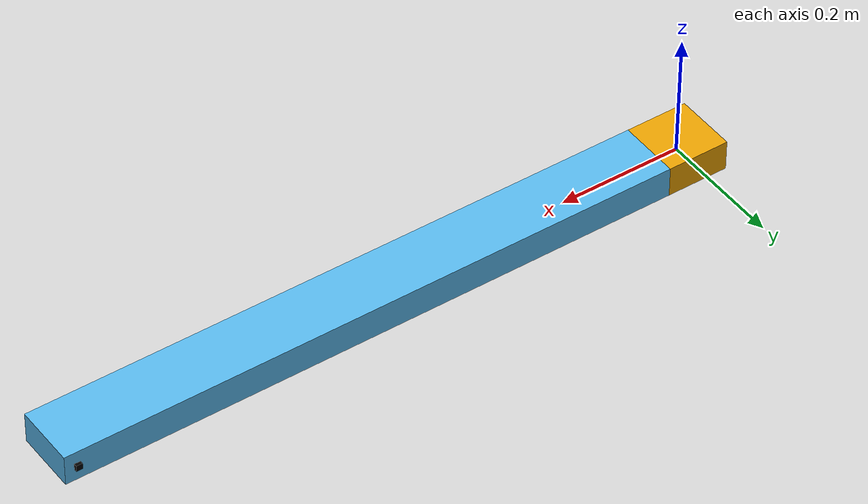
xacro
<?xml version="1.0"?>
<!-- Revolute-Revolute Manipulator -->
<robot name="rrbot" xmlns:xacro="http://www.ros.org/wiki/xacro">

  <!-- Constants for robot dimensions -->
  <xacro:property name="PI" value="3.1415926535897931"/>
  <xacro:property name="mass" value="0.05" /> <!-- arbitrary value for mass -->
  <xacro:property name="width" value="0.2" /> <!-- Square dimensions (widthxwidth) of beams -->
  <xacro:property name="height1" value="0.1" /> <!-- Link 1 -->
  <xacro:property name="height2" value="2" /> <!-- Link 2 -->
  <xacro:property name="height3" value="0.1" /> <!-- Link 3 -->
  <xacro:property name="camera_link" value="0.05" /> <!-- Size of square 'camera' box -->
  <xacro:property name="axel_offset" value="0.05" /> <!-- Space btw top of beam and the each joint -->

  <!-- Used for fixing robot to Gazebo 'base_link' -->

  <!-- Base Link -->
  <link name="link1">
    <collision>
      <origin xyz="0 0 0" rpy="0 0 0"/>
      <geometry>
	<box size="0.1 0.1 0.05"/>
      </geometry>
    </collision>

    <visual>
      <origin xyz="0 0 0" rpy="0 0 0"/>
      <geometry>
	<box size="0.1 0.1 0.05 "/>
      </geometry>
    </visual>

    <inertial>
      <origin xyz="0 0 0" rpy="0 0 0"/>
      <mass value="0.005"/>
      <inertia
	  ixx="${mass / 12.0 * (width*width + height1*height1)}" ixy="0.0" ixz="0.0"
	  iyy="${mass / 12.0 * (height1*height1 + width*width)}" iyz="0.0"
	  izz="${mass / 12.0 * (width*width + width*width)}"/>
    </inertial>
  </link>

  <joint name="joint1" type="revolute">
    <parent link="link1"/>
    <child link="link2"/>
    <origin xyz="0.05 0 0" rpy="0 0 0"/>
    <limit effort="0" velocity="0" lower="0" upper="0" />
    <axis xyz="0 1 0"/>
    <dynamics damping="0.7"/>
  </joint>

  <!-- Middle Link -->
  <link name="link2">
    <collision>
      <origin xyz="0.5 0 0" rpy="0 0 0"/>
      <geometry>
	<box size="1 0.1 0.05"/>
      </geometry>
    </collision>

    <visual>
      <origin xyz="0.5 0 0" rpy="0 0 0"/>
      <geometry>
	<box size="1 0.1 0.05"/>
      </geometry>
    </visual>

    <inertial>
      <origin xyz="0.5 0 0" rpy="0 0 0"/>
      <mass value="0.05"/>
      <inertia
	  ixx="${mass / 12.0 * (width*width + height2*height2)}" ixy="0.0" ixz="0.0"
	  iyy="${mass / 12.0 * (height2*height2 + width*width)}" iyz="0.0"
	  izz="${mass / 12.0 * (width*width + width*width)}"/>
    </inertial>
  </link>

    <joint name="left_end_joint" type="revolute">
      <parent link="link2" />
      <child link="left_end_effector1" />
    <origin xyz="0.98 0.05 0.0" rpy="0 0 0"/>
      <limit effort="30" velocity="1.0" lower="0" upper="0" />
    </joint>

 <link name="left_end_effector1">
      <gravity>0</gravity>
      <visual>
        <origin rpy="0 0 0" xyz="0 0 0"/>
        <geometry>
          <box size="0.01 0.01 0.01"/>
        </geometry>
        <material name="transparent">
          <color rgba="0 0 0 0"/>
        </material>
      </visual>
      <inertial>
        <origin rpy="0 0 0" xyz="0.000000 0.000000 0.000000"/>
        <mass value="0.0001"/>
        <inertia ixx="1e-08" ixy="0" ixz="0" iyy="1e-08" iyz="0" izz="1e-08"/>
      </inertial>
    </link>

    <gazebo>
      <plugin name="gazebo_ros_vacuum_gripper" filename="libhello_world.so">
        <robotNamespace>rrbot</robotNamespace>
        <bodyName>left_end_effector1</bodyName>
        <topicName>grasping</topicName>
      <maxForce>5</maxForce>
      <maxDistance>0.2</maxDistance>
      <minDistance>0.15</minDistance>
      </plugin>
    </gazebo>

</robot>
